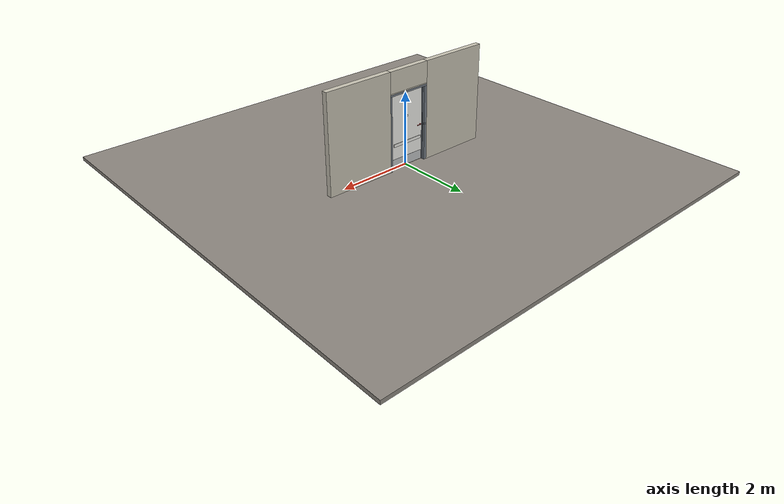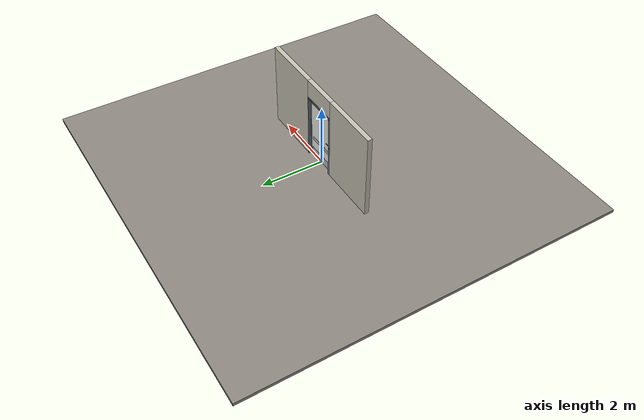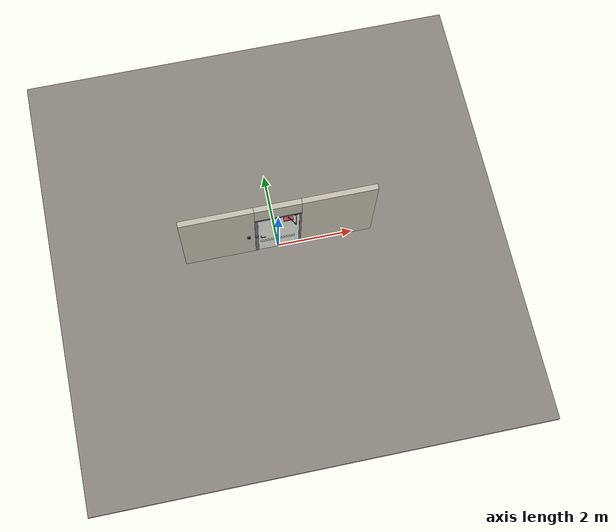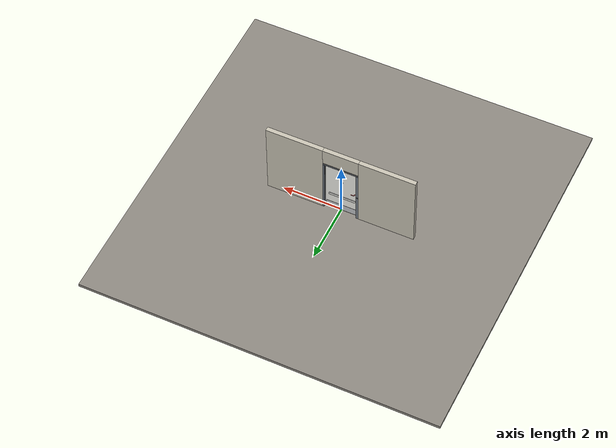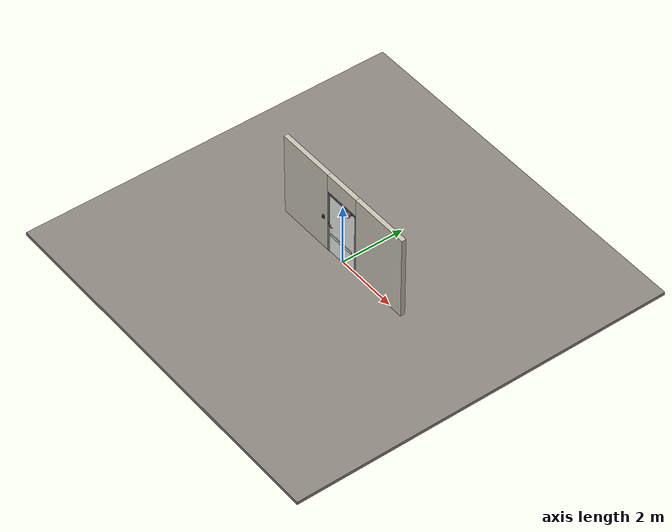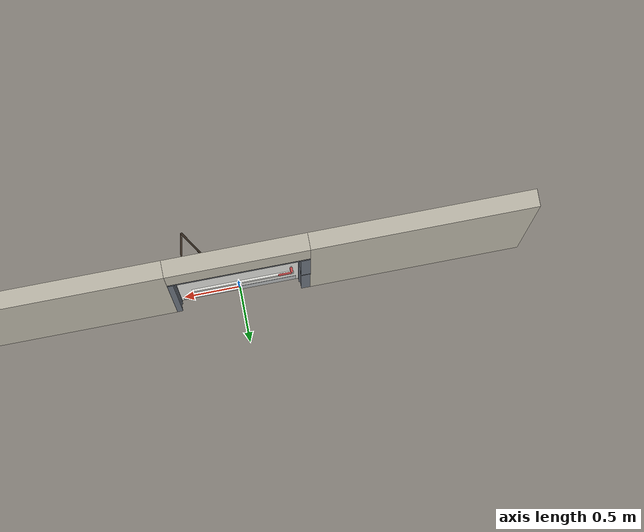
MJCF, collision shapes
<?xml version="1.0" ?>
<mujoco model="db0619_swing_single_full">
  <compiler angle="radian" meshdir="../../hardware" texturedir="../../textures" autolimits="true" inertiafromgeom="false"/>
  <option timestep="0.002" integrator="implicitfast" cone="elliptic" impratio="10" noslip_iterations="3">
    <flag multiccd="enable"/>
  </option>
  <size memory="16M"/>
  <default>
    <geom condim="4" solref="0.005 1" solimp="0.95 0.99 0.001"/>
    <joint solreflimit="0.005 1" solimplimit="0.95 0.99 0.001"/>
    <tendon solreflimit="0.005 1"/>
    <equality solref="0.002 1"/>
  </default>
  <visual>
    <headlight ambient="0.4 0.4 0.4" diffuse="0.7 0.7 0.7" specular="0.2 0.2 0.2"/>
    <quality shadowsize="4096"/>
    <map znear="0.01" zfar="60"/>
  </visual>
  <asset>
    <mesh name="closer_body_b226fdb10b" file="closer_body_b226fdb10b.obj"/>
    <mesh name="hinge_e22b26c0c1" file="hinge_e22b26c0c1.obj"/>
    <mesh name="hinge_jamb_e1d088f8dc" file="hinge_jamb_e1d088f8dc.obj"/>
    <mesh name="lever_6268dcb28c" file="lever_6268dcb28c.obj"/>
    <material name="mat_floor" rgba="0.55 0.53 0.5 1" specular="0.2" shininess="0.15" reflectance="0"/>
    <material name="mat_wall" rgba="0.78 0.76 0.7 1" specular="0.2" shininess="0.1" reflectance="0"/>
    <material name="mat_leaf" rgba="0.93 0.93 0.91 1" specular="0.2" shininess="0.37" reflectance="0"/>
    <material name="mat_hinge" rgba="0.65 0.66 0.68 1" specular="0.74" shininess="0.5" reflectance="0.36"/>
    <material name="mat_op_stainless" rgba="0.75 0.76 0.77 1" specular="0.8" shininess="0.65" reflectance="0.4"/>
    <material name="mat_trim" rgba="0.85 0.66 0.3 1" specular="0.8" shininess="0.75" reflectance="0.4"/>
    <material name="mat_bolt" rgba="0.85 0.66 0.3 1" specular="0.8" shininess="0.75" reflectance="0.4"/>
    <material name="mat_frame" rgba="0.45 0.48 0.52 1" specular="0.32" shininess="0.6" reflectance="0.08"/>
    <material name="mat_closer" rgba="0.22 0.17 0.13 1" specular="0.8" shininess="0.6" reflectance="0.4"/>
    <material name="mat_kick" rgba="0.75 0.76 0.77 1" specular="0.8" shininess="0.65" reflectance="0.4"/>
    <material name="mat_bumper" rgba="0.92 0.92 0.9 1" specular="0.2" shininess="0.6" reflectance="0"/>
    <material name="mat_sign" rgba="0.75 0.76 0.77 1" specular="0.8" shininess="0.65" reflectance="0.4"/>
    <material name="mat_wallreader" rgba="0.05 0.05 0.05 1" specular="0.38" shininess="0.3" reflectance="0.12"/>
    <texture name="skybox" type="skybox" builtin="gradient" rgb1="0.6 0.7 0.85" rgb2="0.9 0.92 0.95" width="256" height="256"/>
  </asset>
  <worldbody>
    <light name="sun" pos="1.5 -2.5 4" dir="-0.3 0.5 -0.8" directional="true" diffuse="0.8 0.8 0.8" specular="0.3 0.3 0.3" castshadow="true"/>
    <light name="fill" pos="-1.5 2.5 3" dir="0.3 -0.5 -0.7" directional="true" diffuse="0.35 0.35 0.4" castshadow="false"/>
    <camera name="robot_view" pos="0 -2.498687 1.734312" xyaxes="1 0 0 0 0.26963 0.962964" fovy="52"/>
    <camera name="far_view" pos="0 2.585687 1.734312" xyaxes="-1 0 0 0 -0.26963 0.962964" fovy="52"/>
    <camera name="iso" pos="-1.932062 -2.091938 2.141063" xyaxes="0.741536 -0.670913 0 0.242917 0.268487 0.932151" fovy="46"/>
    <camera name="detail_handle" pos="-0.187 -0.877 1.296" xyaxes="0.97561 0.219512 0 -0.070934 0.315262 0.94635" fovy="38"/>
    <geom name="floor" type="box" size="6 6 0.05" pos="0 0 -0.05" material="mat_floor" group="0" contype="1" conaffinity="1" friction="0.8 0.005 0.0001" density="2400"/>
    <geom name="wall_left" type="box" size="0.9415 0.0725 1.35" pos="-1.5585 0.0435 1.35" material="mat_wall" group="0" contype="1" conaffinity="1" friction="0.6 0.005 0.0001" density="800"/>
    <geom name="wall_right" type="box" size="0.9565 0.0725 1.35" pos="1.5435 0.0435 1.35" material="mat_wall" group="0" contype="1" conaffinity="1" friction="0.6 0.005 0.0001" density="800"/>
    <geom name="wall_header" type="box" size="0.602 0.0725 0.2875" pos="-0.015 0.0435 2.4125" material="mat_wall" group="0" contype="1" conaffinity="1" friction="0.6 0.005 0.0001" density="800"/>
    <geom name="hinge_0_jamb" type="mesh" mesh="hinge_jamb_e1d088f8dc" pos="0.534 -0.029 0.259" quat="0 0 1 0" material="mat_hinge" group="1" contype="0" conaffinity="0" density="7850"/>
    <geom name="hinge_1_jamb" type="mesh" mesh="hinge_jamb_e1d088f8dc" pos="0.534 -0.029 1.025" quat="0 0 1 0" material="mat_hinge" group="1" contype="0" conaffinity="0" density="7850"/>
    <geom name="hinge_2_jamb" type="mesh" mesh="hinge_jamb_e1d088f8dc" pos="0.534 -0.029 1.861" quat="0 0 1 0" material="mat_hinge" group="1" contype="0" conaffinity="0" density="7850"/>
    <geom name="jamb_hinge" type="box" size="0.025 0.0725 1.0225" pos="0.562 0.0435 1.0225" material="mat_frame" group="0" contype="1" conaffinity="1" friction="0.6 0.005 0.0001" density="300"/>
    <geom name="strike_1016_wall_n" type="box" size="0.04 0.05325 0.0183" pos="-0.577 0.06275 1.016" material="mat_frame" group="0" contype="1" conaffinity="1" friction="0.6 0.005 0.0001" density="300"/>
    <geom name="strike_1016_wall_p" type="box" size="0.04 0.008 0.0183" pos="-0.577 -0.0175 1.016" material="mat_frame" group="0" contype="1" conaffinity="1" friction="0.6 0.005 0.0001" density="300"/>
    <geom name="strike_1016_ramp" type="box" size="0.04 0.018028 0.0183" pos="-0.580282 -0.018312 1.016" quat="0.957092 0 0 -0.289784" material="mat_frame" group="0" contype="1" conaffinity="1" friction="0.12 0.005 0.0001" density="300"/>
    <geom name="strike_1016_back" type="box" size="0.0285 0.0095 0.0183" pos="-0.5885 0 1.016" material="mat_frame" group="0" contype="1" conaffinity="1" friction="0.6 0.005 0.0001" density="300"/>
    <geom name="jamb_strike_0" type="box" size="0.04 0.0725 0.49885" pos="-0.577 0.0435 0.49885" material="mat_frame" group="0" contype="1" conaffinity="1" friction="0.6 0.005 0.0001" density="300"/>
    <geom name="jamb_strike_1" type="box" size="0.04 0.0725 0.50535" pos="-0.577 0.0435 1.53965" material="mat_frame" group="0" contype="1" conaffinity="1" friction="0.6 0.005 0.0001" density="300"/>
    <geom name="jamb_head" type="box" size="0.602 0.0725 0.025" pos="-0.015 0.0435 2.07" material="mat_frame" group="0" contype="1" conaffinity="1" friction="0.6 0.005 0.0001" density="300"/>
    <geom name="head_stud" type="box" size="0.602 0.0725 0.015" pos="-0.015 0.0435 2.11" material="mat_wall" group="0" contype="1" conaffinity="1" friction="0.6 0.005 0.0001" density="500"/>
    <geom name="stop_hinge" type="box" size="0.0055 0.016 1.0225" pos="0.5315 0.0385 1.0225" material="mat_frame" group="0" contype="1" conaffinity="1" friction="0.6 0.005 0.0001" density="300"/>
    <geom name="stop_strike" type="box" size="0.0055 0.016 1.0225" pos="-0.5315 0.0385 1.0225" material="mat_frame" group="0" contype="1" conaffinity="1" friction="0.6 0.005 0.0001" density="300"/>
    <geom name="stop_head" type="box" size="0.537 0.016 0.0055" pos="0 0.0385 2.0395" material="mat_frame" group="0" contype="1" conaffinity="1" friction="0.6 0.005 0.0001" density="300"/>
    <geom name="closer_bracket" type="box" size="0.03 0.012 0.014" pos="0.437 -0.041 2.075" material="mat_closer" group="1" contype="0" conaffinity="0" density="2700"/>
    <geom name="wall_reader" type="box" size="0.04 0.015 0.06" pos="-0.787 -0.044 1.1" material="mat_wallreader" group="0" contype="1" conaffinity="1" friction="0.6 0.005 0.0001" density="1000"/>
    <site name="approach_point" pos="0 -1.5 0" quat="1 0 0 0" size="0.05" rgba="0.2 0.9 0.2 0.5" group="4"/>
    <site name="goal_point" pos="0 1.5 0" quat="1 0 0 0" size="0.05" rgba="0.2 0.9 0.2 0.5" group="4"/>
    <site name="door_plane_center" pos="0 0 1.0225" quat="1 0 0 0" size="0.02" rgba="0.2 0.9 0.2 0.5" group="4"/>
    <body name="leaf" pos="0.537 0 0">
      <inertial pos="-0.508868 -0.005626 1.069843" mass="69.76737" quat="0.518196 -0.51613 -0.475288 -0.489063" diaginertia="6.24395434 28.326180921 34.499739112"/>
      <joint name="leaf_hinge" type="hinge" axis="0 0 1" pos="-0.003 -0.029 0" limited="true" range="0 1.570796" damping="10.475663" frictionloss="0.407309" stiffness="12.859719" springref="-2.527271" armature="0.02"/>
      <geom name="leaf_slab" type="box" size="0.5335 0.022 1.016" pos="-0.5365 0 1.025" material="mat_leaf" group="0" contype="1" conaffinity="1" friction="0.4 0.005 0.0001" density="1"/>
      <geom name="hinge_0" type="mesh" mesh="hinge_e22b26c0c1" pos="-0.003 -0.029 0.259" quat="0 0 1 0" material="mat_hinge" group="1" contype="0" conaffinity="0" density="7850"/>
      <geom name="hinge_1" type="mesh" mesh="hinge_e22b26c0c1" pos="-0.003 -0.029 1.025" quat="0 0 1 0" material="mat_hinge" group="1" contype="0" conaffinity="0" density="7850"/>
      <geom name="hinge_2" type="mesh" mesh="hinge_e22b26c0c1" pos="-0.003 -0.029 1.861" quat="0 0 1 0" material="mat_hinge" group="1" contype="0" conaffinity="0" density="7850"/>
      <geom name="leaf_latch_bolt_faceplate" type="box" size="0.0006 0.014 0.0283" pos="-1.0694 0 1.016" material="mat_bolt" group="1" contype="0" conaffinity="0" density="8500"/>
      <geom name="closer_body" type="mesh" mesh="closer_body_b226fdb10b" pos="-0.3 -0.022 1.952" quat="0 0 -0.707107 0.707107" material="mat_closer" group="1" contype="0" conaffinity="0" density="2000"/>
      <geom name="closer_body_col" type="box" size="0.12 0.04 0.03" pos="-0.3 -0.062 1.952" material="mat_closer" group="3" contype="1" conaffinity="1" rgba="0.8 0.3 0.3 0.25" friction="0.6 0.005 0.0001" density="2000"/>
      <geom name="closer_pinion_shaft" type="cylinder" size="0.008 0.0615" pos="-0.3 -0.064 2.0135" material="mat_closer" group="1" contype="0" conaffinity="0" density="2700"/>
      <geom name="kick_plate_p" type="box" size="0.5035 0.0008 0.125" pos="-0.5365 0.0228 0.144" material="mat_kick" group="2" contype="0" conaffinity="0" density="7900"/>
      <geom name="bumper_rail_n" type="box" size="0.4485 0.01 0.04" pos="-0.5715 -0.032 0.659" material="mat_bumper" group="0" contype="1" conaffinity="1" friction="0.6 0.005 0.0001" density="1200"/>
      <geom name="bumper_rail_p" type="box" size="0.4485 0.01 0.04" pos="-0.5715 0.032 0.659" material="mat_bumper" group="0" contype="1" conaffinity="1" friction="0.6 0.005 0.0001" density="1200"/>
      <geom name="sign_push" type="box" size="0.06 0.001 0.03" pos="-0.5365 0.023 1.359" material="mat_sign" group="2" contype="0" conaffinity="0" density="7900"/>
      <geom name="sign_pull" type="box" size="0.06 0.001 0.03" pos="-0.5365 -0.023 1.359" material="mat_sign" group="2" contype="0" conaffinity="0" density="7900"/>
      <site name="leaf_edge_mid" pos="-1.07 0 1.016" quat="1 0 0 0" size="0.02" rgba="0.2 0.9 0.2 0.5" group="4"/>
      <body name="leaf_handle" pos="-1 0 1.016">
        <inertial pos="0.035149 0 0" mass="1.038236" quat="0.707107 0 0 -0.707107" diaginertia="0.002348364 0.00382535 0.005606687"/>
        <joint name="leaf_handle_hinge" type="hinge" axis="0 1 0" limited="true" range="0 0.96" damping="0.255791" frictionloss="0.05" stiffness="1.2" springref="-0.583333" armature="0.01"/>
        <geom name="leaf_handle_spindle" type="cylinder" size="0.006 0.03" pos="0 0 0" quat="0.707107 -0.707107 0 0" material="mat_op_stainless" group="1" contype="0" conaffinity="0" density="7850"/>
        <geom name="leaf_handle_lever_n" type="mesh" mesh="lever_6268dcb28c" pos="0 -0.022 0" quat="0 0 -0.707107 0.707107" material="mat_op_stainless" group="1" contype="0" conaffinity="0" density="3000"/>
        <geom name="leaf_handle_lever_col_n" type="capsule" size="0.0095 0.0505" pos="0.06 -0.077 0" quat="0.707107 0 0.707107 0" material="mat_op_stainless" group="3" contype="1" conaffinity="1" rgba="0.8 0.3 0.3 0.25" friction="0.7 0.01 0.0001" density="3000"/>
        <geom name="leaf_handle_hub_col_n" type="cylinder" size="0.012 0.022" pos="0 -0.052 0" quat="0.707107 -0.707107 0 0" material="mat_op_stainless" group="3" contype="1" conaffinity="1" rgba="0.8 0.3 0.3 0.25" friction="0.6 0.005 0.0001" density="3000"/>
        <geom name="leaf_handle_lever_p" type="mesh" mesh="lever_6268dcb28c" pos="0 0.022 0" quat="0 0 0.707107 0.707107" material="mat_op_stainless" group="1" contype="0" conaffinity="0" density="3000"/>
        <geom name="leaf_handle_lever_col_p" type="capsule" size="0.0095 0.0505" pos="0.06 0.077 0" quat="0.707107 0 0.707107 0" material="mat_op_stainless" group="3" contype="1" conaffinity="1" rgba="0.8 0.3 0.3 0.25" friction="0.7 0.01 0.0001" density="3000"/>
        <geom name="leaf_handle_hub_col_p" type="cylinder" size="0.012 0.022" pos="0 0.052 0" quat="0.707107 -0.707107 0 0" material="mat_op_stainless" group="3" contype="1" conaffinity="1" rgba="0.8 0.3 0.3 0.25" friction="0.6 0.005 0.0001" density="3000"/>
        <site name="leaf_handle_grip_n" pos="0.096 -0.077 0" quat="1 0 0 0" size="0.012" rgba="0.2 0.9 0.2 0.5" group="4"/>
        <site name="leaf_handle_grip_p" pos="0.096 0.077 0" quat="1 0 0 0" size="0.012" rgba="0.2 0.9 0.2 0.5" group="4"/>
      </body>
      <body name="leaf_latch_bolt" pos="-1.07 0 1.016">
        <inertial pos="0.0055 0 0" mass="0.074627" quat="0.92388 0.382683 0 0" diaginertia="0.000002271 0.000013255 0.000013255"/>
        <joint name="leaf_latch_bolt_slide" type="slide" axis="1 0 0" limited="true" range="0 0.019" damping="2" frictionloss="0.3" stiffness="600" springref="-0.01" armature="0.1"/>
        <geom name="leaf_latch_bolt_capsule" type="capsule" size="0.008 0.0165" pos="0.0055 0 0" quat="0.707107 0 -0.707107 0" material="mat_bolt" group="0" contype="1" conaffinity="1" friction="0.2 0.005 0.0001" density="8500"/>
      </body>
      <body name="closer_arm_main" pos="-0.3 -0.064 2.075" quat="0.881485 0 0 -0.472212">
        <inertial pos="0.14 0 0" mass="0.12096" quat="1 0 0 0" diaginertia="0.000003588 0.00079128 0.000792852"/>
        <joint name="closer_pinion" type="hinge" axis="0 0 1" limited="false" damping="0.01" armature="0.002"/>
        <geom name="closer_arm_main_geom" type="box" size="0.14 0.008 0.005" pos="0.14 0 0" material="mat_closer" group="1" contype="0" conaffinity="0" density="2700"/>
        <body name="closer_arm_fore" pos="0.28 0 0" quat="0.371222 0 0 0.928544">
          <inertial pos="0.128088 0 0" mass="0.076531" quat="1 0 0 0" diaginertia="0.000001771 0.000437665 0.000438201"/>
          <joint name="closer_elbow" type="hinge" axis="0 0 1" limited="false" damping="0.01" armature="0.002"/>
          <geom name="closer_arm_fore_geom" type="box" size="0.1125 0.007 0.004" pos="0.1125 0 0" material="mat_closer" group="1" contype="0" conaffinity="0" density="2700"/>
          <geom name="closer_fore_neck" type="box" size="0.0175 0.003 0.003" pos="0.2425 0 0" material="mat_closer" group="1" contype="0" conaffinity="0" density="2700"/>
          <geom name="closer_fore_pivot" type="cylinder" size="0.005 0.012" pos="0.26 0 0" material="mat_closer" group="1" contype="0" conaffinity="0" density="2700"/>
        </body>
      </body>
    </body>
  </worldbody>
  <tendon>
    <fixed name="leaf_latch_bolt_coupling" limited="true" range="0 10">
      <joint joint="leaf_latch_bolt_slide" coef="1"/>
      <joint joint="leaf_handle_hinge" coef="-0.020879"/>
    </fixed>
  </tendon>
  <equality>
    <connect name="closer_arm_connect" body1="closer_arm_fore" body2="world" anchor="0.26 0 0" active="true"/>
  </equality>
  <contact>
    <exclude body1="closer_arm_main" body2="leaf"/>
    <exclude body1="closer_arm_fore" body2="leaf"/>
    <exclude body1="closer_arm_main" body2="closer_arm_fore"/>
  </contact>
  <sensor>
    <jointpos name="leaf_hinge_pos" joint="leaf_hinge"/>
    <jointvel name="leaf_hinge_vel" joint="leaf_hinge"/>
    <jointpos name="leaf_handle_hinge_pos" joint="leaf_handle_hinge"/>
    <jointvel name="leaf_handle_hinge_vel" joint="leaf_handle_hinge"/>
    <jointpos name="leaf_latch_bolt_slide_pos" joint="leaf_latch_bolt_slide"/>
    <jointvel name="leaf_latch_bolt_slide_vel" joint="leaf_latch_bolt_slide"/>
  </sensor>
</mujoco>
